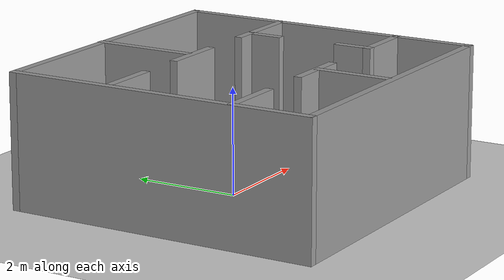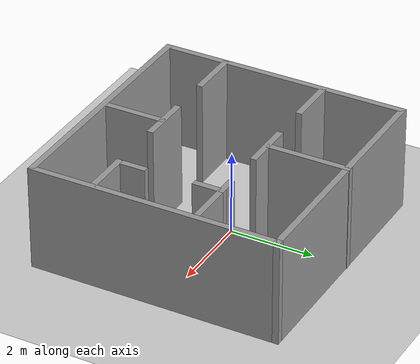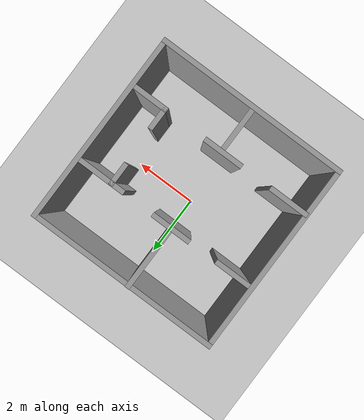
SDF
<sdf version="1.7">
 <world name="default">
  <light name="sun" type="directional">
   <pose>0 0 10 0 -0 0</pose>
   <diffuse>0.8 0.8 0.8 1</diffuse>
   <specular>0.2 0.2 0.2 1</specular>
   <attenuation>
    <range>1000</range>
    <constant>0.9</constant>
    <linear>0.01</linear>
    <quadratic>0.001</quadratic>
   </attenuation>
   <direction>-0.5 0.1 -0.9</direction>
   <spot><inner_angle>0</inner_angle><outer_angle>0</outer_angle><falloff>0</falloff></spot>
  </light>
  <model name="ground_plane">
   <static>1</static>
   <link name="link">
    <collision name="collision">
     <geometry><plane><normal>0 0 1</normal><size>100 100</size></plane></geometry>
     <surface>
      <contact><collide_bitmask>65535</collide_bitmask></contact>
      <friction><ode><mu>100</mu><mu2>50</mu2></ode></friction>
     </surface>
    </collision>
    <visual name="visual">
     <cast_shadows>0</cast_shadows>
     <geometry><plane><normal>0 0 1</normal><size>100 100</size></plane></geometry>
     <material>
      <script><uri>file://media/materials/scripts/gazebo.material</uri><name>Gazebo/Grey</name></script>
     </material>
    </visual>
   </link>
  </model>
  <gravity>0 0 -9.8</gravity>
  <magnetic_field>6e-06 2.3e-05 -4.2e-05</magnetic_field>
  <atmosphere type="adiabatic"/>
  <physics type="ode">
   <max_step_size>0.001</max_step_size>
   <real_time_factor>1</real_time_factor>
   <real_time_update_rate>1000</real_time_update_rate>
  </physics>
  <scene><ambient>0.4 0.4 0.4 1</ambient><background>0.7 0.7 0.7 1</background><shadows>1</shadows></scene>
  <spherical_coordinates>
   <surface_model>EARTH_WGS84</surface_model>
   <latitude_deg>0</latitude_deg>
   <longitude_deg>0</longitude_deg>
   <elevation>0</elevation>
   <heading_deg>0</heading_deg>
  </spherical_coordinates>
  <model name="maze5">
   <pose>0.247715 -0.142264 0 0 -0 0</pose>
   <link name="Wall_0">
    <collision name="Wall_0_Collision">
     <geometry><box><size>6 0.15 2.5</size></box></geometry>
     <pose>0 0 1.25 0 -0 0</pose>
    </collision>
    <visual name="Wall_0_Visual">
     <pose>0 0 1.25 0 -0 0</pose>
     <geometry><box><size>6 0.15 2.5</size></box></geometry>
     <material>
      <script><uri>file://media/materials/scripts/gazebo.material</uri><name>Gazebo/Grey</name></script>
      <ambient>1 1 1 1</ambient>
     </material>
     <meta><layer>0</layer></meta>
    </visual>
    <pose>0 -2.93068 0 0 -0 0</pose>
   </link>
   <link name="Wall_1">
    <collision name="Wall_1_Collision">
     <geometry><box><size>6 0.15 2.5</size></box></geometry>
     <pose>0 0 1.25 0 -0 0</pose>
    </collision>
    <visual name="Wall_1_Visual">
     <pose>0 0 1.25 0 -0 0</pose>
     <geometry><box><size>6 0.15 2.5</size></box></geometry>
     <material>
      <script><uri>file://media/materials/scripts/gazebo.material</uri><name>Gazebo/Grey</name></script>
      <ambient>1 1 1 1</ambient>
     </material>
     <meta><layer>0</layer></meta>
    </visual>
    <pose>2.925 -0.005685 0 0 -0 1.5708</pose>
   </link>
   <link name="Wall_10">
    <collision name="Wall_10_Collision">
     <geometry><box><size>1.25 0.15 2.5</size></box></geometry>
     <pose>0 0 1.25 0 -0 0</pose>
    </collision>
    <visual name="Wall_10_Visual">
     <pose>0 0 1.25 0 -0 0</pose>
     <geometry><box><size>1.25 0.15 2.5</size></box></geometry>
     <material>
      <script><uri>file://media/materials/scripts/gazebo.material</uri><name>Gazebo/Grey</name></script>
      <ambient>1 1 1 1</ambient>
     </material>
     <meta><layer>0</layer></meta>
    </visual>
    <pose>-0.221468 1.00699 0 0 -0 3.14159</pose>
   </link>
   <link name="Wall_12">
    <collision name="Wall_12_Collision">
     <geometry><box><size>2 0.15 2.5</size></box></geometry>
     <pose>0 0 1.25 0 -0 0</pose>
    </collision>
    <visual name="Wall_12_Visual">
     <pose>0 0 1.25 0 -0 0</pose>
     <geometry><box><size>2 0.15 2.5</size></box></geometry>
     <material>
      <script><uri>file://media/materials/scripts/gazebo.material</uri><name>Gazebo/Grey</name></script>
      <ambient>1 1 1 1</ambient>
     </material>
     <meta><layer>0</layer></meta>
    </visual>
    <pose>-0.233307 2.00569 0 0 -0 -1.5708</pose>
   </link>
   <link name="Wall_14">
    <collision name="Wall_14_Collision">
     <geometry><box><size>1.25 0.15 2.5</size></box></geometry>
     <pose>0 0 1.25 0 -0 0</pose>
    </collision>
    <visual name="Wall_14_Visual">
     <pose>0 0 1.25 0 -0 0</pose>
     <geometry><box><size>1.25 0.15 2.5</size></box></geometry>
     <material>
      <script><uri>file://media/materials/scripts/gazebo.material</uri><name>Gazebo/Grey</name></script>
      <ambient>1 1 1 1</ambient>
     </material>
     <meta><layer>0</layer></meta>
    </visual>
    <pose>-2.33024 -1.45939 0 0 -0 0</pose>
   </link>
   <link name="Wall_16">
    <collision name="Wall_16_Collision">
     <geometry><box><size>1.25 0.15 2.5</size></box></geometry>
     <pose>0 0 1.25 0 -0 0</pose>
    </collision>
    <visual name="Wall_16_Visual">
     <pose>0 0 1.25 0 -0 0</pose>
     <geometry><box><size>1.25 0.15 2.5</size></box></geometry>
     <material>
      <script><uri>file://media/materials/scripts/gazebo.material</uri><name>Gazebo/Grey</name></script>
      <ambient>1 1 1 1</ambient>
     </material>
     <meta><layer>0</layer></meta>
    </visual>
    <pose>-0.130236 -1.45939 0 0 -0 0</pose>
   </link>
   <link name="Wall_18">
    <collision name="Wall_18_Collision">
     <geometry><box><size>1.18942 0.15 2.5</size></box></geometry>
     <pose>0 0 1.25 0 -0 0</pose>
    </collision>
    <visual name="Wall_18_Visual">
     <pose>0 0 1.25 0 -0 0</pose>
     <geometry><box><size>1.18942 0.15 2.5</size></box></geometry>
     <material>
      <script><uri>file://media/materials/scripts/gazebo.material</uri><name>Gazebo/Grey</name></script>
      <ambient>1 1 1 1</ambient>
     </material>
     <meta><layer>0</layer></meta>
    </visual>
    <pose>2.35006 -1.45939 0 0 -0 0</pose>
   </link>
   <link name="Wall_2">
    <collision name="Wall_2_Collision">
     <geometry><box><size>6 0.15 2.5</size></box></geometry>
     <pose>0 0 1.25 0 -0 0</pose>
    </collision>
    <visual name="Wall_2_Visual">
     <pose>0 0 1.25 0 -0 0</pose>
     <geometry><box><size>6 0.15 2.5</size></box></geometry>
     <material>
      <script><uri>file://media/materials/scripts/gazebo.material</uri><name>Gazebo/Grey</name></script>
      <ambient>1 1 1 1</ambient>
     </material>
     <meta><layer>0</layer></meta>
    </visual>
    <pose>0 2.91932 0 0 -0 3.14159</pose>
   </link>
   <link name="Wall_20">
    <collision name="Wall_20_Collision">
     <geometry><box><size>1.5 0.15 2.5</size></box></geometry>
     <pose>0 0 1.25 0 -0 0</pose>
    </collision>
    <visual name="Wall_20_Visual">
     <pose>0 0 1.25 0 -0 0</pose>
     <geometry><box><size>1.5 0.15 2.5</size></box></geometry>
     <material>
      <script><uri>file://media/materials/scripts/gazebo.material</uri><name>Gazebo/Grey</name></script>
      <ambient>1 1 1 1</ambient>
     </material>
     <meta><layer>0</layer></meta>
    </visual>
    <pose>-0.066067 -2.17385 0 0 -0 -1.5708</pose>
   </link>
   <link name="Wall_22">
    <collision name="Wall_22_Collision">
     <geometry><box><size>0.75 0.15 2.5</size></box></geometry>
     <pose>0 0 1.25 0 -0 0</pose>
    </collision>
    <visual name="Wall_22_Visual">
     <pose>0 0 1.25 0 -0 0</pose>
     <geometry><box><size>0.75 0.15 2.5</size></box></geometry>
     <material>
      <script><uri>file://media/materials/scripts/gazebo.material</uri><name>Gazebo/Grey</name></script>
      <ambient>1 1 1 1</ambient>
     </material>
     <meta><layer>0</layer></meta>
    </visual>
    <pose>1.83035 -1.15939 0 0 -0 1.5708</pose>
   </link>
   <link name="Wall_25">
    <collision name="Wall_25_Collision">
     <geometry><box><size>0.75 0.15 2.5</size></box></geometry>
     <pose>0 0 1.25 0 -0 0</pose>
    </collision>
    <visual name="Wall_25_Visual">
     <pose>0 0 1.25 0 -0 0</pose>
     <geometry><box><size>0.75 0.15 2.5</size></box></geometry>
     <material>
      <script><uri>file://media/materials/scripts/gazebo.material</uri><name>Gazebo/Grey</name></script>
      <ambient>1 1 1 1</ambient>
     </material>
     <meta><layer>0</layer></meta>
    </visual>
    <pose>1.78249 0.703404 0 0 -0 -1.5708</pose>
   </link>
   <link name="Wall_27">
    <collision name="Wall_27_Collision">
     <geometry><box><size>0.5 0.15 2.5</size></box></geometry>
     <pose>0 0 1.25 0 -0 0</pose>
    </collision>
    <visual name="Wall_27_Visual">
     <pose>0 0 1.25 0 -0 0</pose>
     <geometry><box><size>0.5 0.15 2.5</size></box></geometry>
     <material>
      <script><uri>file://media/materials/scripts/gazebo.material</uri><name>Gazebo/Grey</name></script>
      <ambient>1 1 1 1</ambient>
     </material>
     <meta><layer>0</layer></meta>
    </visual>
    <pose>1.60749 1.0034 0 0 -0 0</pose>
   </link>
   <link name="Wall_3">
    <collision name="Wall_3_Collision">
     <geometry><box><size>6 0.15 2.5</size></box></geometry>
     <pose>0 0 1.25 0 -0 0</pose>
    </collision>
    <visual name="Wall_3_Visual">
     <pose>0 0 1.25 0 -0 0</pose>
     <geometry><box><size>6 0.15 2.5</size></box></geometry>
     <material>
      <script><uri>file://media/materials/scripts/gazebo.material</uri><name>Gazebo/Grey</name></script>
      <ambient>1 1 1 1</ambient>
     </material>
     <meta><layer>0</layer></meta>
    </visual>
    <pose>-2.925 -0.005685 0 0 -0 -1.5708</pose>
   </link>
   <link name="Wall_5">
    <collision name="Wall_5_Collision">
     <geometry><box><size>1.25 0.15 2.5</size></box></geometry>
     <pose>0 0 1.25 0 -0 0</pose>
    </collision>
    <visual name="Wall_5_Visual">
     <pose>0 0 1.25 0 -0 0</pose>
     <geometry><box><size>1.25 0.15 2.5</size></box></geometry>
     <material>
      <script><uri>file://media/materials/scripts/gazebo.material</uri><name>Gazebo/Grey</name></script>
      <ambient>1 1 1 1</ambient>
     </material>
     <meta><layer>0</layer></meta>
    </visual>
    <pose>-2.34848 0.998239 0 0 -0 0</pose>
   </link>
   <link name="Wall_8">
    <collision name="Wall_8_Collision">
     <geometry><box><size>1.25 0.15 2.5</size></box></geometry>
     <pose>0 0 1.25 0 -0 0</pose>
    </collision>
    <visual name="Wall_8_Visual">
     <pose>0 0 1.25 0 -0 0</pose>
     <geometry><box><size>1.25 0.15 2.5</size></box></geometry>
     <material>
      <script><uri>file://media/materials/scripts/gazebo.material</uri><name>Gazebo/Grey</name></script>
      <ambient>1 1 1 1</ambient>
     </material>
     <meta><layer>0</layer></meta>
    </visual>
    <pose>2.33249 1.0034 0 0 -0 0</pose>
   </link>
   <static>1</static>
  </model>
 </world>
</sdf>
